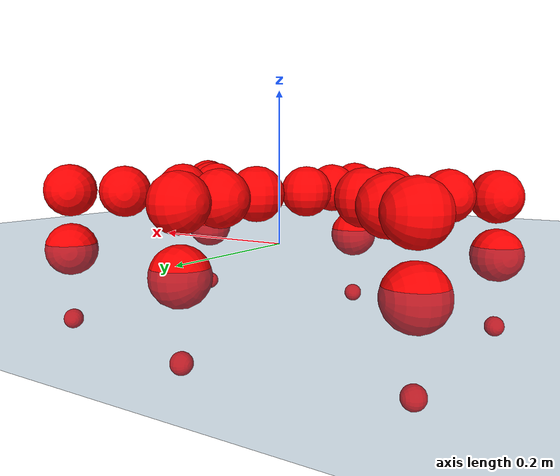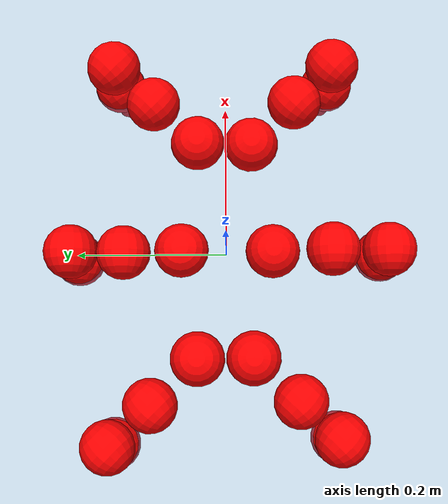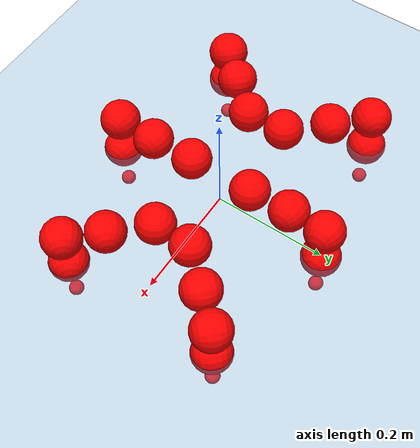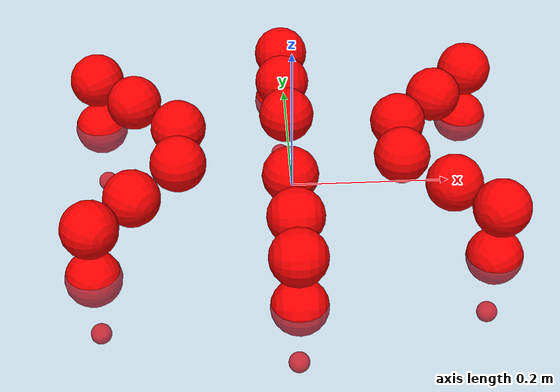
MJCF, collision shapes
<mujoco model="Golem">
  <compiler angle="radian" assetdir="assets" balanceinertia="true" inertiafromgeom="false"/>

  <option timestep="0.005" density="1.2" viscosity="2e-05"/>

  <size nkey="1"/>

  <visual>
    <quality shadowsize="8192"/>
    <map shadowclip="0.5"/>
  </visual>

  <default>
    <default class="/">
      <joint armature="0.01" damping="0.01" frictionloss="0.01"/>
      <geom contype="0" conaffinity="0" group="1" solref="-1000 -80"/>
      <site size="0.01 0.005 0.005" group="5"/>
      <general forcelimited="true" biastype="affine" gainprm="25" biasprm="0 -25 -0.5"/>
      <default class="visual">
        <geom type="mesh" group="2"/>
      </default>
      <default class="collision">
        <geom group="3"/>
      </default>
      <default class="foot">
        <geom size="0.01 0 0" condim="6" group="4" priority="1" solimp="0.015 1 0.01"/>
      </default>
      <default class="reward_collision_sphere">
        <geom group="5" rgba="1 0 0 1"/>
      </default>
    </default>
  </default>

  <asset>
    <texture type="skybox" colorspace="auto" name="//unnamed_texture_0" builtin="gradient" rgb1="0.95 0.95 0.95" rgb2="0.95 0.95 0.95" width="100" height="600"/>
    <texture type="2d" colorspace="auto" name="texplane" builtin="checker" rgb1="0.345 0.575 0.748" rgb2="0.345 0.575 0.748" markrgb="1 1 1" width="512" height="512"/>
    <material name="MatPlane" class="/" texture="texplane" texuniform="true" texrepeat="2 2" specular="0.9"/>
    <mesh name="body" class="/" file="body.stl" scale="0.001 0.001 0.001"/>
    <mesh name="coxa" class="/" file="coxa.stl" scale="0.001 0.001 0.001"/>
    <mesh name="femur" class="/" file="femur.stl" scale="0.001 0.001 0.001"/>
    <mesh name="tibia" class="/" file="tibia.stl" scale="0.001 0.001 0.001"/>
    <mesh name="tarsus" class="/" file="tarsus.stl" scale="0.001 0.001 0.001"/>
  </asset>

  <worldbody>
    <geom name="floor" class="/" size="100 100 0.125" type="plane" group="0" material="MatPlane"/>
    <light name="toplight_shadow" class="/" pos="0 0 5" dir="0.0990148 0.0990148 -0.990148" type="directional" ambient="0.04 0.04 0.04" diffuse="0.55 0.55 0.55" specular="0.12 0.12 0.12"/>
    <light name="toplight_fill" class="/" pos="0 0 5" dir="0.0990148 0.0990148 -0.990148" type="directional" castshadow="false" ambient="0.04 0.04 0.04" diffuse="0.3 0.3 0.3" specular="0.08 0.08 0.08"/>
    <body name="trunk" pos="-0.00209833 -8.90671e-05 0.000403603" quat="0.999999 -0.000303918 -0.00101892 0.000812402">
      <inertial pos="0.00148831 0.0023618 -6.72806e-05" quat="0.999986 0.00456944 0.00277986 -7.14075e-05" mass="2.33267" diaginertia="0.00513831 0.00123738 0.0129288"/>
      <joint name="//unnamed_joint_0" type="free"/>
      <geom name="//unnamed_geom_1" class="/" pos="0 0 0.0680009" quat="1 0 0 0" type="mesh" rgba="0.9 0.9 0.9 1" mesh="body"/>
      <site name="imu" class="/" pos="0.11311 0.0125114 0.102718" size="0.00868494"/>
      <camera name="track" class="/" pos="0 -1.31881 0" quat="0.707107 0.707107 0 0" mode="trackcom"/>
      <camera name="ego_camera" class="/" pos="0.114863 0 0.106251" quat="-0.5 -0.5 0.5 0.5"/>
      <body name="coxa_RR" pos="-0.157298 -0.0523724 0.0680641" quat="0.383798 0.000496991 -0.000178052 -0.923417">
        <inertial pos="0.00153254 0.00028985 0.000605081" quat="0.999918 -0.00538273 0.0116187 -9.64367e-05" mass="0.139846" diaginertia="0.00556969 0.00128169 0.0141219"/>
        <joint name="coxa_joint_RR" class="/" pos="0 0 0" axis="-0.00278974 0.00130113 -0.999995" range="-3.13715 3.08732" armature="0.0098236" damping="0.0145273" frictionloss="0.00882907"/>
        <geom name="//unnamed_geom_2" class="/" type="mesh" rgba="0.2 0.2 0.2 1" mesh="coxa"/>
        <geom name="//unnamed_geom_3" class="reward_collision_sphere" size="0.0347398" pos="-0.0265068 0 0"/>
        <body name="femur_RR" pos="0.0533861 0.0028918 -0.00265266" quat="0.499707 -0.500571 0.499386 0.500335">
          <inertial pos="0.00270329 4.93709e-06 -0.000492608" quat="0.999913 -0.0112619 0.00680161 0.000809757" mass="0.133655" diaginertia="0.00547413 0.00126976 0.013631"/>
          <joint name="femur_joint_RR" class="/" pos="0 0 0" axis="0.000305595 0.000391737 -1" stiffness="0.00749788" range="-3.11554 3.10848" armature="0.00881072" damping="0.0097404" frictionloss="0.00872053"/>
          <geom name="//unnamed_geom_4" class="/" type="mesh" rgba="0.9 0.9 0.9 1" mesh="femur"/>
          <geom name="//unnamed_geom_5" class="reward_collision_sphere" size="0.0347398"/>
          <body name="tibia_RR" pos="0.00199242 -0.0689839 0.00199231" quat="0.000178974 1 0.000394159 -0.000420779">
            <inertial pos="-0.00220754 -0.000537794 0.000409451" quat="1 -0.000468669 0.000298138 -0.00065467" mass="0.135623" diaginertia="0.00540103 0.00124951 0.0139674"/>
            <joint name="tibia_joint_RR" class="/" pos="0 0 0" axis="-0.00456241 0.0124304 0.999912" stiffness="0.00703255" range="-3.13823 3.12919" armature="0.00879617" damping="0.00113846" frictionloss="0.0088854"/>
            <geom name="//unnamed_geom_6" class="/" type="mesh" rgba="0.2 0.2 0.2 1" mesh="tibia"/>
            <geom name="//unnamed_geom_7" class="reward_collision_sphere" size="0.0347398"/>
            <body name="tarsus_RR" pos="0.076263 0.00253483 -2.00221e-05" quat="1 -0.000119433 0.000609652 2.28801e-06">
              <inertial pos="0.0538418 0.00034504 0.000151101" quat="0.499934 0.499794 0.500111 0.500161" mass="0.135515" diaginertia="0.00563566 0.00128509 0.014074"/>
              <joint name="tarsus_joint_RR" class="/" pos="0 0 0" axis="0.00101051 0.000484281 0.999999" range="-3.14418 3.13622" armature="0.00841729" damping="0.0427917" frictionloss="0.00765698"/>
              <geom name="//unnamed_geom_8" class="/" type="mesh" rgba="0.9 0.9 0.9 1" mesh="tarsus"/>
              <geom name="foot_1" class="foot" size="0.00908274" pos="0.0989588 0 0" quat="0 -0.707107 0 0.707107"/>
              <geom name="//unnamed_geom_10" class="reward_collision_sphere" size="0.0347398"/>
              <geom name="//unnamed_geom_11" class="reward_collision_sphere" size="0.0130274" pos="0.0949828 0 0"/>
              <site name="foot_1" class="foot" pos="0.0989588 0 0" quat="0 -0.707107 0 0.707107" size="0.00868494"/>
            </body>
          </body>
        </body>
      </body>
      <body name="coxa_RM" pos="-0.0028669 -0.0860237 0.0659342" quat="0.707172 -6.81046e-05 -0.000195901 -0.707041">
        <inertial pos="-0.00255119 0.000485227 0.00142408" quat="0.999997 -0.00156104 0.00178858 3.15867e-05" mass="0.134891" diaginertia="0.00553097 0.00129889 0.0140902"/>
        <joint name="coxa_joint_RM" class="/" pos="0 0 0" axis="0.000326701 0.00162801 -0.999999" range="-3.09281 3.14654" armature="0.00960664" damping="0.0152341" frictionloss="0.00851343"/>
        <geom name="//unnamed_geom_12" class="/" type="mesh" rgba="0.2 0.2 0.2 1" mesh="coxa"/>
        <geom name="//unnamed_geom_13" class="reward_collision_sphere" size="0.0347398" pos="-0.0265068 0 0"/>
        <body name="femur_RM" pos="0.0509154 0.00224045 0.00120735" quat="0.499718 -0.500215 0.500342 0.499724">
          <inertial pos="-0.000260742 -0.0013096 -0.000214135" quat="0.999912 -0.00666311 -0.00764757 -0.00850528" mass="0.127513" diaginertia="0.00518169 0.00121444 0.0132792"/>
          <joint name="femur_joint_RM" class="/" pos="0 0 0" axis="0.000952801 -0.000923195 -0.999999" range="-3.19233 3.1577" armature="0.00870853" damping="0.00887846" frictionloss="0.00867374"/>
          <geom name="//unnamed_geom_14" class="/" type="mesh" rgba="0.9 0.9 0.9 1" mesh="femur"/>
          <geom name="//unnamed_geom_15" class="reward_collision_sphere" size="0.0347398"/>
          <body name="tibia_RM" pos="-0.00111645 -0.0712669 -0.001296" quat="0.000203397 0.999999 -0.000257571 -0.00121666">
            <inertial pos="-0.00204301 0.000539075 0.00101069" quat="0.999937 0.00589611 0.00834159 0.00462363" mass="0.130139" diaginertia="0.00536475 0.00120944 0.0131429"/>
            <joint name="tibia_joint_RM" class="/" pos="0 0 0" axis="-0.00193874 -0.00186466 0.999996" range="-3.14162 3.13865" armature="0.00900134" damping="0" frictionloss="0.00909882"/>
            <geom name="//unnamed_geom_16" class="/" type="mesh" rgba="0.2 0.2 0.2 1" mesh="tibia"/>
            <geom name="//unnamed_geom_17" class="reward_collision_sphere" size="0.0347398"/>
            <body name="tarsus_RM" pos="0.07766 0.00025035 -0.00174882" quat="0.999999 -0.000867245 0.000782309 -0.000543614">
              <inertial pos="0.0527742 -0.000189592 0.000411798" quat="0.499345 0.501386 0.500711 0.498554" mass="0.129472" diaginertia="0.0054314 0.00123106 0.0137555"/>
              <joint name="tarsus_joint_RM" class="/" pos="0 0 0" axis="-0.0127858 -0.00240899 0.999915" range="-3.1787 3.19094" armature="0.00813676" damping="0.00723242" frictionloss="0.00755633"/>
              <geom name="//unnamed_geom_18" class="/" type="mesh" rgba="0.9 0.9 0.9 1" mesh="tarsus"/>
              <geom name="foot_2" class="foot" size="0.00840392" pos="0.0989588 0 0" quat="0 -0.707107 0 0.707107"/>
              <geom name="//unnamed_geom_20" class="reward_collision_sphere" size="0.0347398"/>
              <geom name="//unnamed_geom_21" class="reward_collision_sphere" size="0.0130274" pos="0.0949828 0 0"/>
              <site name="foot_2" class="foot" pos="0.0989588 0 0" quat="0 -0.707107 0 0.707107" size="0.00868494"/>
            </body>
          </body>
        </body>
      </body>
      <body name="coxa_RF" pos="0.154534 -0.0520888 0.0692281" quat="0.92408 -0.00102269 0.000473664 -0.382196">
        <inertial pos="0.00277371 0.00271193 0.000258324" quat="0.999996 0.00264781 0.000169002 0.000860133" mass="0.128994" diaginertia="0.00543422 0.0012176 0.0135598"/>
        <joint name="coxa_joint_RF" class="/" pos="0 0 0" axis="-0.00433292 -0.00343471 -0.999985" range="-3.12802 3.08529" armature="0.00876781" damping="0.0244063" frictionloss="0.00842231"/>
        <geom name="//unnamed_geom_22" class="/" type="mesh" rgba="0.2 0.2 0.2 1" mesh="coxa"/>
        <geom name="//unnamed_geom_23" class="reward_collision_sphere" size="0.0347398" pos="-0.0265068 0 0"/>
        <body name="femur_RF" pos="0.05312 -0.000485139 0.00010533" quat="0.499743 -0.500665 0.499135 0.500455">
          <inertial pos="0.000224395 -0.00149073 0.00276849" quat="0.999919 -0.00303778 -0.00705938 0.0101171" mass="0.129224" diaginertia="0.00520387 0.00120688 0.0126528"/>
          <joint name="femur_joint_RF" class="/" pos="0 0 0" axis="0.00270985 -0.012756 -0.999915" range="-3.13562 3.11477" armature="0.00992118" damping="0.00607699" frictionloss="0.00965903"/>
          <geom name="//unnamed_geom_24" class="/" type="mesh" rgba="0.9 0.9 0.9 1" mesh="femur"/>
          <geom name="//unnamed_geom_25" class="reward_collision_sphere" size="0.0347398"/>
          <body name="tibia_RF" pos="-0.00118464 -0.0697216 -0.00141643" quat="-0.000140397 1 -0.000298027 0.000149518">
            <inertial pos="-0.000663904 0.000102221 -0.000485224" quat="0.999932 -0.0114894 -0.000357822 0.00204371" mass="0.12888" diaginertia="0.00516854 0.00121654 0.0135695"/>
            <joint name="tibia_joint_RF" class="/" pos="0 0 0" axis="-0.00385951 -0.000137398 0.999993" range="-3.13866 3.19222" armature="0.0084445" damping="0.00285756" frictionloss="0.00850296"/>
            <geom name="//unnamed_geom_26" class="/" type="mesh" rgba="0.2 0.2 0.2 1" mesh="tibia"/>
            <geom name="//unnamed_geom_27" class="reward_collision_sphere" size="0.0347398"/>
            <body name="tarsus_RF" pos="0.0759171 -0.00133045 0.00169851" quat="0.999999 0.000190911 -0.000905018 0.000881222">
              <inertial pos="0.0534295 0.000311987 0.000348427" quat="0.496238 0.49774 0.507081 0.498871" mass="0.128712" diaginertia="0.00527467 0.00121888 0.0128535"/>
              <joint name="tarsus_joint_RF" class="/" pos="0 0 0" axis="-0.00405283 0.000824745 0.999991" range="-3.13798 3.13403" armature="0.00861124" damping="0.00842987" frictionloss="0.00932779"/>
              <geom name="//unnamed_geom_28" class="/" type="mesh" rgba="0.9 0.9 0.9 1" mesh="tarsus"/>
              <geom name="foot_3" class="foot" size="0.00940392" pos="0.0989588 0 0" quat="0 -0.707107 0 0.707107"/>
              <geom name="//unnamed_geom_30" class="reward_collision_sphere" size="0.0347398"/>
              <geom name="//unnamed_geom_31" class="reward_collision_sphere" size="0.0130274" pos="0.0949828 0 0"/>
              <site name="foot_3" class="foot" pos="0.0989588 0 0" quat="0 -0.707107 0 0.707107" size="0.00868494"/>
            </body>
          </body>
        </body>
      </body>
      <body name="coxa_LR" pos="-0.157631 0.0558966 0.0693451" quat="0.382531 0.00114919 -0.000386456 0.923942">
        <inertial pos="-0.000552841 -0.000876983 -0.000316429" quat="0.999997 0.00182369 -0.000917508 0.00151973" mass="0.131096" diaginertia="0.00524837 0.00124346 0.0131877"/>
        <joint name="coxa_joint_LR" class="/" pos="0 0 0" axis="0.00706449 0.0143499 -0.999872" range="-3.08996 3.13759" armature="0.00844867" damping="0.00843003" frictionloss="0.00882654"/>
        <geom name="//unnamed_geom_32" class="/" type="mesh" rgba="0.2 0.2 0.2 1" mesh="coxa"/>
        <geom name="//unnamed_geom_33" class="reward_collision_sphere" size="0.0347398" pos="-0.0265068 0 0"/>
        <body name="femur_LR" pos="0.056155 -0.00159216 -0.0024696" quat="0.50001 -0.499972 0.500018 0.499999">
          <inertial pos="-0.000513489 0.000532275 0.000431827" quat="1 0.000353397 -0.000163498 -0.000176705" mass="0.130427" diaginertia="0.00543527 0.00122944 0.0137797"/>
          <joint name="femur_joint_LR" class="/" pos="0 0 0" axis="-0.00640497 -0.00288059 0.999975" range="-3.19324 3.19151" armature="0.00892333" damping="0" frictionloss="0.00900317"/>
          <geom name="//unnamed_geom_34" class="/" type="mesh" rgba="0.9 0.9 0.9 1" mesh="femur"/>
          <geom name="//unnamed_geom_35" class="reward_collision_sphere" size="0.0347398"/>
          <body name="tibia_LR" pos="5.09215e-05 -0.073048 -0.00137318" quat="0.000117771 1 0.000211688 -0.000356666">
            <inertial pos="-0.00271683 0.00077626 -0.00251128" quat="0.999991 0.00141916 -0.00142105 0.00365387" mass="0.130912" diaginertia="0.00546289 0.00130005 0.0133812"/>
            <joint name="tibia_joint_LR" class="/" pos="0 0 0" axis="-0.000310717 -0.00242671 -0.999997" range="-3.08683 3.18518" armature="0.00831439" damping="0.00168578" frictionloss="0.00879999"/>
            <geom name="//unnamed_geom_36" class="/" type="mesh" rgba="0.2 0.2 0.2 1" mesh="tibia"/>
            <geom name="//unnamed_geom_37" class="reward_collision_sphere" size="0.0347398"/>
            <body name="tarsus_LR" pos="0.0786714 0.000734919 -0.000179295" quat="1 -2.80588e-05 7.50906e-06 1.15807e-06">
              <inertial pos="0.052843 -0.000190644 -0.000637147" quat="0.500404 0.500566 0.498209 0.500817" mass="0.134459" diaginertia="0.00548051 0.00131658 0.0140017"/>
              <joint name="tarsus_joint_LR" class="/" pos="0 0 0" axis="-0.00917845 -0.0107065 -0.999901" stiffness="0.00575448" range="-3.12204 3.09529" armature="0.00907811" damping="0.026866" frictionloss="0.00966736"/>
              <geom name="//unnamed_geom_38" class="/" type="mesh" rgba="0.9 0.9 0.9 1" mesh="tarsus"/>
              <geom name="foot_4" class="foot" size="0.00850765" pos="0.0989588 0 0" quat="0.707107 0 -0.707107 0"/>
              <geom name="//unnamed_geom_40" class="reward_collision_sphere" size="0.0347398"/>
              <geom name="//unnamed_geom_41" class="reward_collision_sphere" size="0.0130274" pos="0.0949828 0 0"/>
              <site name="foot_4" class="foot" pos="0.0989588 0 0" quat="0.707107 0 -0.707107 0" size="0.00868494"/>
            </body>
          </body>
        </body>
      </body>
      <body name="coxa_LM" pos="-0.0014745 0.0835225 0.0690159" quat="0.707145 0.000256693 -8.09484e-05 0.707068">
        <inertial pos="0.00299622 0.00259128 2.19075e-05" quat="1 -6.67364e-05 0.000308972 9.99682e-05" mass="0.13122" diaginertia="0.00533951 0.00124753 0.0135479"/>
        <joint name="coxa_joint_LM" class="/" pos="0 0 0" axis="0.00311462 0.00456179 -0.999985" range="-3.10897 3.10778" armature="0.00977306" damping="0.0043917" frictionloss="0.00927851"/>
        <geom name="//unnamed_geom_42" class="/" type="mesh" rgba="0.2 0.2 0.2 1" mesh="coxa"/>
        <geom name="//unnamed_geom_43" class="reward_collision_sphere" size="0.0347398" pos="-0.0265068 0 0"/>
        <body name="femur_LM" pos="0.047414 0.00190049 -0.00063442" quat="0.499225 -0.499363 0.500568 0.500842">
          <inertial pos="-0.00181855 0.00111985 0.00103806" quat="0.999934 -0.0058689 0.00510159 -0.00849308" mass="0.129643" diaginertia="0.00547447 0.00120362 0.0132182"/>
          <joint name="femur_joint_LM" class="/" pos="0 0 0" axis="0.000596834 -0.00151501 0.999999" stiffness="0.00430237" range="-3.13942 3.14158" armature="0.00751313" damping="0" frictionloss="0.008721"/>
          <geom name="//unnamed_geom_44" class="/" type="mesh" rgba="0.9 0.9 0.9 1" mesh="femur"/>
          <geom name="//unnamed_geom_45" class="reward_collision_sphere" size="0.0347398"/>
          <body name="tibia_LM" pos="0.000332171 -0.0675534 -0.00184554" quat="9.09968e-06 1 5.39054e-05 8.59833e-06">
            <inertial pos="-0.000728427 0.000113043 0.000884551" quat="0.999998 0.000407478 0.00184417 0.000681618" mass="0.127074" diaginertia="0.00524593 0.00125419 0.0136114"/>
            <joint name="tibia_joint_LM" class="/" pos="0 0 0" axis="0.00189885 -0.00858806 -0.999961" range="-3.13337 3.18162" armature="0.00889385" damping="0" frictionloss="0.00803557"/>
            <geom name="//unnamed_geom_46" class="/" type="mesh" rgba="0.2 0.2 0.2 1" mesh="tibia"/>
            <geom name="//unnamed_geom_47" class="reward_collision_sphere" size="0.0347398"/>
            <body name="tarsus_LM" pos="0.079 0.000414757 -0.000980045" quat="1 0.000128927 0.000190093 -3.98357e-05">
              <inertial pos="0.0545185 0.000630761 -0.00024126" quat="0.501499 0.495681 0.500272 0.50252" mass="0.139759" diaginertia="0.005605 0.00128085 0.0135335"/>
              <joint name="tarsus_joint_LM" class="/" pos="0 0 0" axis="-9.31575e-05 -0.00111103 -0.999999" stiffness="0.0119476" range="-3.13738 3.10127" armature="0.00856095" damping="0.0200065" frictionloss="0.00864703"/>
              <geom name="//unnamed_geom_48" class="/" type="mesh" rgba="0.9 0.9 0.9 1" mesh="tarsus"/>
              <geom name="foot_5" class="foot" size="0.00869883" pos="0.0989588 0 0" quat="0.707107 0 -0.707107 0"/>
              <geom name="//unnamed_geom_50" class="reward_collision_sphere" size="0.0347398"/>
              <geom name="//unnamed_geom_51" class="reward_collision_sphere" size="0.0130274" pos="0.0949828 0 0"/>
              <site name="foot_5" class="foot" pos="0.0989588 0 0" quat="0.707107 0 -0.707107 0" size="0.00868494"/>
            </body>
          </body>
        </body>
      </body>
      <body name="coxa_LF" pos="0.157128 0.0545365 0.069462" quat="0.923855 -2.11198e-05 0.00017628 0.382742">
        <inertial pos="-0.000321561 -0.000884424 0.000360246" quat="1 0.00024041 5.14908e-05 0.000208052" mass="0.128113" diaginertia="0.00529117 0.0012614 0.0137267"/>
        <joint name="coxa_joint_LF" class="/" pos="0 0 0" axis="-0.00547748 0.00806207 -0.999952" range="-3.14248 3.1297" armature="0.00848999" damping="0.0111441" frictionloss="0.00863576"/>
        <geom name="//unnamed_geom_52" class="/" type="mesh" rgba="0.2 0.2 0.2 1" mesh="coxa"/>
        <geom name="//unnamed_geom_53" class="reward_collision_sphere" size="0.0347398" pos="-0.0265068 0 0"/>
        <body name="femur_LF" pos="0.0516562 0.00295296 -0.00242313" quat="0.499784 -0.499912 0.500046 0.500258">
          <inertial pos="-0.00260564 0.000239137 0.000780375" quat="0.999996 -0.00217713 -0.00162088 0.000621404" mass="0.131786" diaginertia="0.00529467 0.0011894 0.0131233"/>
          <joint name="femur_joint_LF" class="/" pos="0 0 0" axis="-0.00807195 -0.0114488 0.999902" range="-3.13628 3.08619" armature="0.00764665" damping="0.0027333" frictionloss="0.00822466"/>
          <geom name="//unnamed_geom_54" class="/" type="mesh" rgba="0.9 0.9 0.9 1" mesh="femur"/>
          <geom name="//unnamed_geom_55" class="reward_collision_sphere" size="0.0347398"/>
          <body name="tibia_LF" pos="-0.00252861 -0.0707675 0.00227198" quat="0.000353109 1 -5.5499e-05 -0.000190521">
            <inertial pos="-0.000594626 0.000933201 -0.00088399" quat="0.999912 -0.00982031 0.000333223 0.00896547" mass="0.128352" diaginertia="0.00535203 0.00125206 0.013469"/>
            <joint name="tibia_joint_LF" class="/" pos="0 0 0" axis="-5.19667e-05 -0.000536738 -1" range="-3.12911 3.11827" armature="0.00754188" damping="0" frictionloss="0.00862331"/>
            <geom name="//unnamed_geom_56" class="/" type="mesh" rgba="0.2 0.2 0.2 1" mesh="tibia"/>
            <geom name="//unnamed_geom_57" class="reward_collision_sphere" size="0.0347398"/>
            <body name="tarsus_LF" pos="0.0787569 0.000312647 0.000112167" quat="0.999999 0.000145102 0.000897708 0.000935743">
              <inertial pos="0.0556142 -0.00228793 -5.66331e-05" quat="0.499431 0.498706 0.500336 0.501523" mass="0.127698" diaginertia="0.00528253 0.00121004 0.0133169"/>
              <joint name="tarsus_joint_LF" class="/" pos="0 0 0" axis="-0.0096104 0.00932437 -0.99991" range="-3.08837 3.12806" armature="0.00861386" damping="0.0236913" frictionloss="0.00845699"/>
              <geom name="//unnamed_geom_58" class="/" type="mesh" rgba="0.9 0.9 0.9 1" mesh="tarsus"/>
              <geom name="foot_6" class="foot" size="0.0078177" pos="0.0989588 0 0" quat="0.707107 0 -0.707107 0"/>
              <geom name="//unnamed_geom_60" class="reward_collision_sphere" size="0.0347398"/>
              <geom name="//unnamed_geom_61" class="reward_collision_sphere" size="0.0130274" pos="0.0949828 0 0"/>
              <site name="foot_6" class="foot" pos="0.0989588 0 0" quat="0.707107 0 -0.707107 0" size="0.00868494"/>
            </body>
          </body>
        </body>
      </body>
    </body>
  </worldbody>

  <contact>
    <pair class="/" geom1="floor" geom2="foot_1" name="//unnamed_contact_0"/>
    <pair class="/" geom1="floor" geom2="foot_2" name="//unnamed_contact_1"/>
    <pair class="/" geom1="floor" geom2="foot_3" name="//unnamed_contact_2"/>
    <pair class="/" geom1="floor" geom2="foot_4" name="//unnamed_contact_3"/>
    <pair class="/" geom1="floor" geom2="foot_5" name="//unnamed_contact_4"/>
    <pair class="/" geom1="floor" geom2="foot_6" name="//unnamed_contact_5"/>
  </contact>

  <actuator>
    <general name="coxa_joint_RR" class="/" joint="coxa_joint_RR" forcerange="-6.28707 6.28707" gainprm="21.2832" biasprm="0 -21.2832 -0.431253"/>
    <general name="femur_joint_RR" class="/" joint="femur_joint_RR" forcerange="-6.32842 6.32842" gainprm="21.2832" biasprm="0 -21.2832 -0.431253"/>
    <general name="tibia_joint_RR" class="/" joint="tibia_joint_RR" forcerange="-6.46116 6.46116" gainprm="21.2832" biasprm="0 -21.2832 -0.431253"/>
    <general name="tarsus_joint_RR" class="/" joint="tarsus_joint_RR" forcerange="-6.55341 6.55341" gainprm="21.2832" biasprm="0 -21.2832 -0.431253"/>
    <general name="coxa_joint_RM" class="/" joint="coxa_joint_RM" forcerange="-6.5101 6.5101" gainprm="21.2832" biasprm="0 -21.2832 -0.431253"/>
    <general name="femur_joint_RM" class="/" joint="femur_joint_RM" forcerange="-5.79022 5.79022" gainprm="21.2832" biasprm="0 -21.2832 -0.431253"/>
    <general name="tibia_joint_RM" class="/" joint="tibia_joint_RM" forcerange="-6.30464 6.30464" gainprm="21.2832" biasprm="0 -21.2832 -0.431253"/>
    <general name="tarsus_joint_RM" class="/" joint="tarsus_joint_RM" forcerange="-6.25437 6.25437" gainprm="21.2832" biasprm="0 -21.2832 -0.431253"/>
    <general name="coxa_joint_RF" class="/" joint="coxa_joint_RF" forcerange="-5.75489 5.75489" gainprm="21.2832" biasprm="0 -21.2832 -0.431253"/>
    <general name="femur_joint_RF" class="/" joint="femur_joint_RF" forcerange="-5.82704 5.82704" gainprm="21.2832" biasprm="0 -21.2832 -0.431253"/>
    <general name="tibia_joint_RF" class="/" joint="tibia_joint_RF" forcerange="-6.81822 6.81822" gainprm="21.2832" biasprm="0 -21.2832 -0.431253"/>
    <general name="tarsus_joint_RF" class="/" joint="tarsus_joint_RF" forcerange="-6.40122 6.40122" gainprm="21.2832" biasprm="0 -21.2832 -0.431253"/>
    <general name="coxa_joint_LR" class="/" joint="coxa_joint_LR" forcerange="-6.44682 6.44682" gainprm="21.2832" biasprm="0 -21.2832 -0.431253"/>
    <general name="femur_joint_LR" class="/" joint="femur_joint_LR" forcerange="-6.1054 6.1054" gainprm="21.2832" biasprm="0 -21.2832 -0.431253"/>
    <general name="tibia_joint_LR" class="/" joint="tibia_joint_LR" forcerange="-5.70429 5.70429" gainprm="21.2832" biasprm="0 -21.2832 -0.431253"/>
    <general name="tarsus_joint_LR" class="/" joint="tarsus_joint_LR" forcerange="-6.97011 6.97011" gainprm="21.2832" biasprm="0 -21.2832 -0.431253"/>
    <general name="coxa_joint_LM" class="/" joint="coxa_joint_LM" forcerange="-6.52527 6.52527" gainprm="21.2832" biasprm="0 -21.2832 -0.431253"/>
    <general name="femur_joint_LM" class="/" joint="femur_joint_LM" forcerange="-6.28991 6.28991" gainprm="21.2832" biasprm="0 -21.2832 -0.431253"/>
    <general name="tibia_joint_LM" class="/" joint="tibia_joint_LM" forcerange="-6.31053 6.31053" gainprm="21.2832" biasprm="0 -21.2832 -0.431253"/>
    <general name="tarsus_joint_LM" class="/" joint="tarsus_joint_LM" forcerange="-6.33602 6.33602" gainprm="21.2832" biasprm="0 -21.2832 -0.431253"/>
    <general name="coxa_joint_LF" class="/" joint="coxa_joint_LF" forcerange="-6.36438 6.36438" gainprm="21.2832" biasprm="0 -21.2832 -0.431253"/>
    <general name="femur_joint_LF" class="/" joint="femur_joint_LF" forcerange="-6.33848 6.33848" gainprm="21.2832" biasprm="0 -21.2832 -0.431253"/>
    <general name="tibia_joint_LF" class="/" joint="tibia_joint_LF" forcerange="-6.24908 6.24908" gainprm="21.2832" biasprm="0 -21.2832 -0.431253"/>
    <general name="tarsus_joint_LF" class="/" joint="tarsus_joint_LF" forcerange="-6.39063 6.39063" gainprm="21.2832" biasprm="0 -21.2832 -0.431253"/>
  </actuator>

  <sensor>
    <gyro site="imu" name="imu_angular_velocity"/>
    <velocimeter site="imu" name="imu_linear_velocity"/>
    <framelinvel objtype="site" objname="foot_1" name="foot_1_global_linear_velocity"/>
    <framelinvel objtype="site" objname="foot_2" name="foot_2_global_linear_velocity"/>
    <framelinvel objtype="site" objname="foot_3" name="foot_3_global_linear_velocity"/>
    <framelinvel objtype="site" objname="foot_4" name="foot_4_global_linear_velocity"/>
    <framelinvel objtype="site" objname="foot_5" name="foot_5_global_linear_velocity"/>
    <framelinvel objtype="site" objname="foot_6" name="foot_6_global_linear_velocity"/>
  </sensor>

  <keyframe>
    <key name="home" qpos="0 0 0.1457 1 0 0 0 0 0 0 0 0 0 0 0 0 0 0 0 0 0 0 0 0 0 0 0 0 0 0 0"/>
  </keyframe>
</mujoco>
